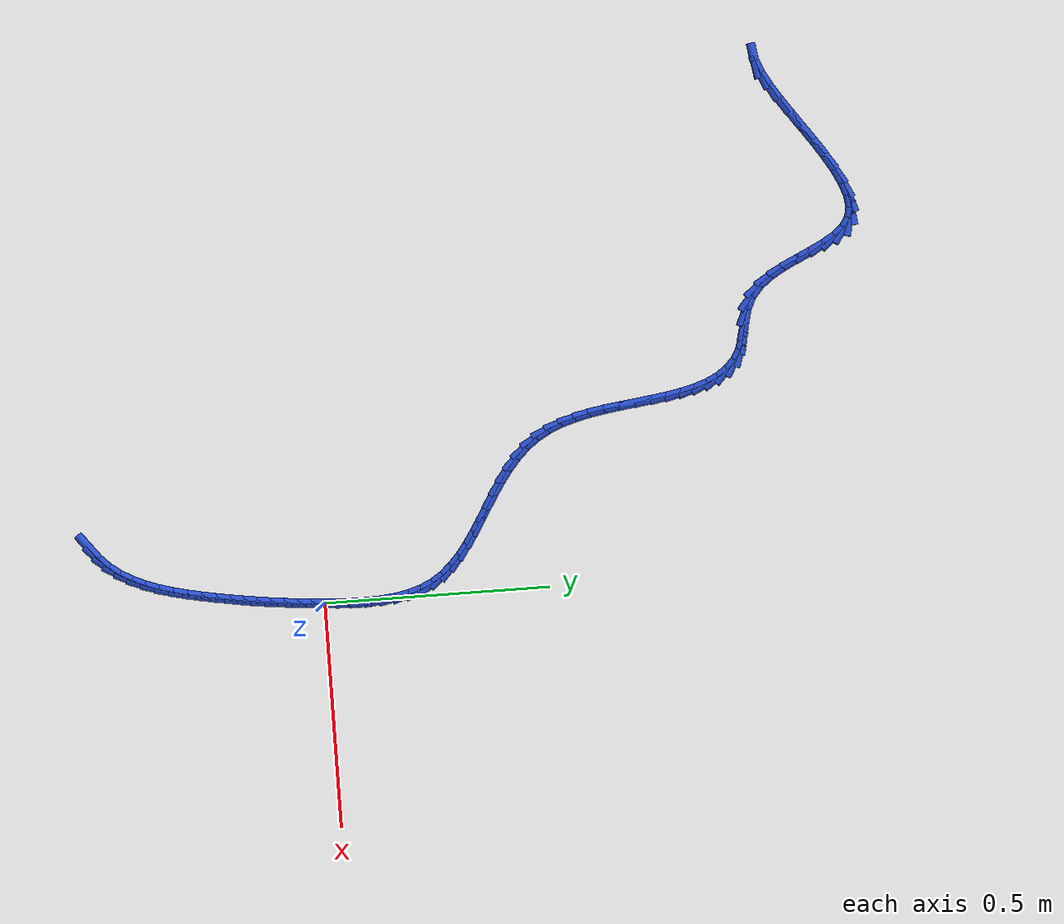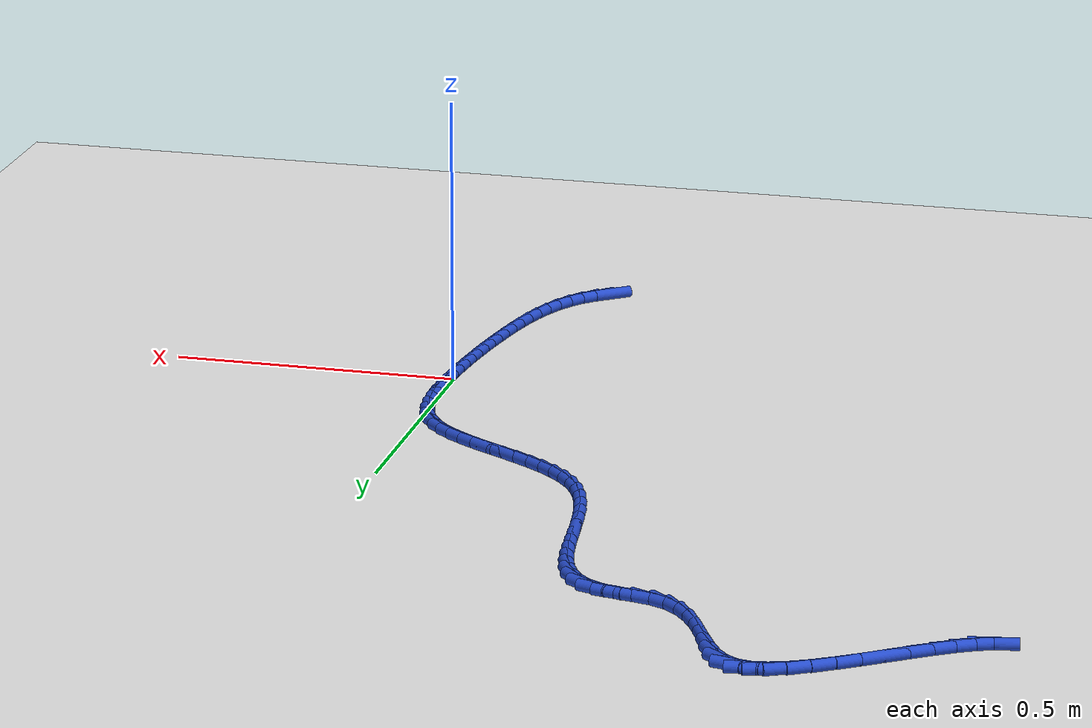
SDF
<sdf version="1.6">
 <world name="default">
  <model name="ground_plane">
   <static>1</static>
   <link name="link">
    <collision name="collision">
     <geometry><plane><normal>0 0 1</normal><size>100 100</size></plane></geometry>
     <surface><friction><ode><mu>100</mu><mu2>50</mu2></ode></friction></surface>
    </collision>
    <visual name="visual">
     <cast_shadows>0</cast_shadows>
     <geometry><plane><normal>0 0 1</normal><size>100 100</size></plane></geometry>
     <material>
      <script><uri>file://media/materials/scripts/gazebo.material</uri><name>Gazebo/WhiteGlow</name></script>
     </material>
    </visual>
   </link>
  </model>
  <model name="line">
   <link name="link_0">
    <pose>-3.903127820947816e-18 -1.3877787807814457e-16 0.01 0 1.57 1.5075836220869705</pose>
    <collision name="collision">
     <geometry><cylinder><radius>0.01</radius><length>0.08</length></cylinder></geometry>
    </collision>
    <visual name="visual">
     <material>
      <script><name>Gazebo/Blue</name><uri>file://media/materials/scripts/gazebo.material</uri></script>
     </material>
     <geometry><cylinder><radius>0.01</radius><length>0.08</length></cylinder></geometry>
    </visual>
   </link>
   <link name="link_1">
    <pose>0.0020164505479032184 0.03185695079526101 0.01 0 1.57 1.5313063499105368</pose>
    <collision name="collision">
     <geometry><cylinder><radius>0.01</radius><length>0.08</length></cylinder></geometry>
    </collision>
    <visual name="visual">
     <material>
      <script><name>Gazebo/Blue</name><uri>file://media/materials/scripts/gazebo.material</uri></script>
     </material>
     <geometry><cylinder><radius>0.01</radius><length>0.08</length></cylinder></geometry>
    </visual>
   </link>
   <link name="link_2">
    <pose>0.0032904388714438586 0.06410123431389136 0.01 0 1.57 1.5672807837218443</pose>
    <collision name="collision">
     <geometry><cylinder><radius>0.01</radius><length>0.08</length></cylinder></geometry>
    </collision>
    <visual name="visual">
     <material>
      <script><name>Gazebo/Blue</name><uri>file://media/materials/scripts/gazebo.material</uri></script>
     </material>
     <geometry><cylinder><radius>0.01</radius><length>0.08</length></cylinder></geometry>
    </visual>
   </link>
   <link name="link_3">
    <pose>0.003403725928168772 0.096325726423337 0.01 0 1.57 -1.5247356906483298</pose>
    <collision name="collision">
     <geometry><cylinder><radius>0.01</radius><length>0.08</length></cylinder></geometry>
    </collision>
    <visual name="visual">
     <material>
      <script><name>Gazebo/Blue</name><uri>file://media/materials/scripts/gazebo.material</uri></script>
     </material>
     <geometry><cylinder><radius>0.01</radius><length>0.08</length></cylinder></geometry>
    </visual>
   </link>
   <link name="link_4">
    <pose>0.0019380726756248095 0.12812330299104396 0.01 0 1.57 -1.4594232896090267</pose>
    <collision name="collision">
     <geometry><cylinder><radius>0.01</radius><length>0.08</length></cylinder></geometry>
    </collision>
    <visual name="visual">
     <material>
      <script><name>Gazebo/Blue</name><uri>file://media/materials/scripts/gazebo.material</uri></script>
     </material>
     <geometry><cylinder><radius>0.01</radius><length>0.08</length></cylinder></geometry>
    </visual>
   </link>
   <link name="link_5">
    <pose>-0.0015247599286411775 0.15908683988445826 0.01 0 1.57 -1.375544059959423</pose>
    <collision name="collision">
     <geometry><cylinder><radius>0.01</radius><length>0.08</length></cylinder></geometry>
    </collision>
    <visual name="visual">
     <material>
      <script><name>Gazebo/Blue</name><uri>file://media/materials/scripts/gazebo.material</uri></script>
     </material>
     <geometry><cylinder><radius>0.01</radius><length>0.08</length></cylinder></geometry>
    </visual>
   </link>
   <link name="link_6">
    <pose>-0.007403010927082336 0.18880921297102593 0.01 0 1.57 -1.2699000928512538</pose>
    <collision name="collision">
     <geometry><cylinder><radius>0.01</radius><length>0.08</length></cylinder></geometry>
    </collision>
    <visual name="visual">
     <material>
      <script><name>Gazebo/Blue</name><uri>file://media/materials/scripts/gazebo.material</uri></script>
     </material>
     <geometry><cylinder><radius>0.01</radius><length>0.08</length></cylinder></geometry>
    </visual>
   </link>
   <link name="link_7">
    <pose>-0.016114919362151814 0.21688329811819312 0.01 0 1.57 -1.1398093752033278</pose>
    <collision name="collision">
     <geometry><cylinder><radius>0.01</radius><length>0.08</length></cylinder></geometry>
    </collision>
    <visual name="visual">
     <material>
      <script><name>Gazebo/Blue</name><uri>file://media/materials/scripts/gazebo.material</uri></script>
     </material>
     <geometry><cylinder><radius>0.01</radius><length>0.08</length></cylinder></geometry>
    </visual>
   </link>
   <link name="link_8">
    <pose>-0.02807872427630276 0.24290197119340579 0.01 0 1.57 -0.9881987893661152</pose>
    <collision name="collision">
     <geometry><cylinder><radius>0.01</radius><length>0.08</length></cylinder></geometry>
    </collision>
    <visual name="visual">
     <material>
      <script><name>Gazebo/Blue</name><uri>file://media/materials/scripts/gazebo.material</uri></script>
     </material>
     <geometry><cylinder><radius>0.01</radius><length>0.08</length></cylinder></geometry>
    </visual>
   </link>
   <link name="link_9">
    <pose>-0.04364009713171598 0.26651962588731637 0.01 0 1.57 -0.846864442697634</pose>
    <collision name="collision">
     <geometry><cylinder><radius>0.01</radius><length>0.08</length></cylinder></geometry>
    </collision>
    <visual name="visual">
     <material>
      <script><name>Gazebo/Blue</name><uri>file://media/materials/scripts/gazebo.material</uri></script>
     </material>
     <geometry><cylinder><radius>0.01</radius><length>0.08</length></cylinder></geometry>
    </visual>
   </link>
   <link name="link_10">
    <pose>-0.06254245248338933 0.2879012080379926 0.01 0 1.57 -0.7339181928377716</pose>
    <collision name="collision">
     <geometry><cylinder><radius>0.01</radius><length>0.08</length></cylinder></geometry>
    </collision>
    <visual name="visual">
     <material>
      <script><name>Gazebo/Blue</name><uri>file://media/materials/scripts/gazebo.material</uri></script>
     </material>
     <geometry><cylinder><radius>0.01</radius><length>0.08</length></cylinder></geometry>
    </visual>
   </link>
   <link name="link_11">
    <pose>-0.08423112233999577 0.3074643574456941 0.01 0 1.57 -0.6495082023152806</pose>
    <collision name="collision">
     <geometry><cylinder><radius>0.01</radius><length>0.08</length></cylinder></geometry>
    </collision>
    <visual name="visual">
     <material>
      <script><name>Gazebo/Blue</name><uri>file://media/materials/scripts/gazebo.material</uri></script>
     </material>
     <geometry><cylinder><radius>0.01</radius><length>0.08</length></cylinder></geometry>
    </visual>
   </link>
   <link name="link_12">
    <pose>-0.10814931214468339 0.32562851666724923 0.01 0 1.57 -0.591349700956301</pose>
    <collision name="collision">
     <geometry><cylinder><radius>0.01</radius><length>0.08</length></cylinder></geometry>
    </collision>
    <visual name="visual">
     <material>
      <script><name>Gazebo/Blue</name><uri>file://media/materials/scripts/gazebo.material</uri></script>
     </material>
     <geometry><cylinder><radius>0.01</radius><length>0.08</length></cylinder></geometry>
    </visual>
   </link>
   <link name="link_13">
    <pose>-0.1337402273406002 0.3428131282594858 0.01 0 1.57 -0.5567859104704407</pose>
    <collision name="collision">
     <geometry><cylinder><radius>0.01</radius><length>0.08</length></cylinder></geometry>
    </collision>
    <visual name="visual">
     <material>
      <script><name>Gazebo/Blue</name><uri>file://media/materials/scripts/gazebo.material</uri></script>
     </material>
     <geometry><cylinder><radius>0.01</radius><length>0.08</length></cylinder></geometry>
    </visual>
   </link>
   <link name="link_14">
    <pose>-0.1604470733708942 0.3594376347792322 0.01 0 1.57 -0.5437635951876674</pose>
    <collision name="collision">
     <geometry><cylinder><radius>0.01</radius><length>0.08</length></cylinder></geometry>
    </collision>
    <visual name="visual">
     <material>
      <script><name>Gazebo/Blue</name><uri>file://media/materials/scripts/gazebo.material</uri></script>
     </material>
     <geometry><cylinder><radius>0.01</radius><length>0.08</length></cylinder></geometry>
    </visual>
   </link>
   <link name="link_15">
    <pose>-0.1877130556787135 0.3759214787833164 0.01 0 1.57 -0.5511791643567712</pose>
    <collision name="collision">
     <geometry><cylinder><radius>0.01</radius><length>0.08</length></cylinder></geometry>
    </collision>
    <visual name="visual">
     <material>
      <script><name>Gazebo/Blue</name><uri>file://media/materials/scripts/gazebo.material</uri></script>
     </material>
     <geometry><cylinder><radius>0.01</radius><length>0.08</length></cylinder></geometry>
    </visual>
   </link>
   <link name="link_16">
    <pose>-0.21498137970720602 0.3926841028285664 0.01 0 1.57 -0.5789191369160495</pose>
    <collision name="collision">
     <geometry><cylinder><radius>0.01</radius><length>0.08</length></cylinder></geometry>
    </collision>
    <visual name="visual">
     <material>
      <script><name>Gazebo/Blue</name><uri>file://media/materials/scripts/gazebo.material</uri></script>
     </material>
     <geometry><cylinder><radius>0.01</radius><length>0.08</length></cylinder></geometry>
    </visual>
   </link>
   <link name="link_17">
    <pose>-0.24169525089951993 0.41014494947181074 0.01 0 1.57 -0.627733292693414</pose>
    <collision name="collision">
     <geometry><cylinder><radius>0.01</radius><length>0.08</length></cylinder></geometry>
    </collision>
    <visual name="visual">
     <material>
      <script><name>Gazebo/Blue</name><uri>file://media/materials/scripts/gazebo.material</uri></script>
     </material>
     <geometry><cylinder><radius>0.01</radius><length>0.08</length></cylinder></geometry>
    </visual>
   </link>
   <link name="link_18">
    <pose>-0.26729787469880323 0.4287234612698771 0.01 0 1.57 -0.6989187107194657</pose>
    <collision name="collision">
     <geometry><cylinder><radius>0.01</radius><length>0.08</length></cylinder></geometry>
    </collision>
    <visual name="visual">
     <material>
      <script><name>Gazebo/Blue</name><uri>file://media/materials/scripts/gazebo.material</uri></script>
     </material>
     <geometry><cylinder><radius>0.01</radius><length>0.08</length></cylinder></geometry>
    </visual>
   </link>
   <link name="link_19">
    <pose>-0.2912324565482039 0.4488390807795937 0.01 0 1.57 -0.7936759227544717</pose>
    <collision name="collision">
     <geometry><cylinder><radius>0.01</radius><length>0.08</length></cylinder></geometry>
    </collision>
    <visual name="visual">
     <material>
      <script><name>Gazebo/Blue</name><uri>file://media/materials/scripts/gazebo.material</uri></script>
     </material>
     <geometry><cylinder><radius>0.01</radius><length>0.08</length></cylinder></geometry>
    </visual>
   </link>
   <link name="link_20">
    <pose>-0.31294220189086996 0.4709112505577889 0.01 0 1.57 -0.9119773880350294</pose>
    <collision name="collision">
     <geometry><cylinder><radius>0.01</radius><length>0.08</length></cylinder></geometry>
    </collision>
    <visual name="visual">
     <material>
      <script><name>Gazebo/Blue</name><uri>file://media/materials/scripts/gazebo.material</uri></script>
     </material>
     <geometry><cylinder><radius>0.01</radius><length>0.08</length></cylinder></geometry>
    </visual>
   </link>
   <link name="link_21">
    <pose>-0.33187031616994955 0.4953594131612905 0.01 0 1.57 -1.0485901152458557</pose>
    <collision name="collision">
     <geometry><cylinder><radius>0.01</radius><length>0.08</length></cylinder></geometry>
    </collision>
    <visual name="visual">
     <material>
      <script><name>Gazebo/Blue</name><uri>file://media/materials/scripts/gazebo.material</uri></script>
     </material>
     <geometry><cylinder><radius>0.01</radius><length>0.08</length></cylinder></geometry>
    </visual>
   </link>
   <link name="link_22">
    <pose>-0.3475195333807346 0.5225520334368505 0.01 0 1.57 -1.1731074590070527</pose>
    <collision name="collision">
     <geometry><cylinder><radius>0.01</radius><length>0.08</length></cylinder></geometry>
    </collision>
    <visual name="visual">
     <material>
      <script><name>Gazebo/Blue</name><uri>file://media/materials/scripts/gazebo.material</uri></script>
     </material>
     <geometry><cylinder><radius>0.01</radius><length>0.08</length></cylinder></geometry>
    </visual>
   </link>
   <link name="link_23">
    <pose>-0.3600231857537802 0.5523175588302576 0.01 0 1.57 -1.2701942811796618</pose>
    <collision name="collision">
     <geometry><cylinder><radius>0.01</radius><length>0.08</length></cylinder></geometry>
    </collision>
    <visual name="visual">
     <material>
      <script><name>Gazebo/Blue</name><uri>file://media/materials/scripts/gazebo.material</uri></script>
     </material>
     <geometry><cylinder><radius>0.01</radius><length>0.08</length></cylinder></geometry>
    </visual>
   </link>
   <link name="link_24">
    <pose>-0.3698940579065953 0.5841594899664346 0.01 0 1.57 -1.3427371461727866</pose>
    <collision name="collision">
     <geometry><cylinder><radius>0.01</radius><length>0.08</length></cylinder></geometry>
    </collision>
    <visual name="visual">
     <material>
      <script><name>Gazebo/Blue</name><uri>file://media/materials/scripts/gazebo.material</uri></script>
     </material>
     <geometry><cylinder><radius>0.01</radius><length>0.08</length></cylinder></geometry>
    </visual>
   </link>
   <link name="link_25">
    <pose>-0.3776501348054274 0.6175768741137091 0.01 0 1.57 -1.3940874275996893</pose>
    <collision name="collision">
     <geometry><cylinder><radius>0.01</radius><length>0.08</length></cylinder></geometry>
    </collision>
    <visual name="visual">
     <material>
      <script><name>Gazebo/Blue</name><uri>file://media/materials/scripts/gazebo.material</uri></script>
     </material>
     <geometry><cylinder><radius>0.01</radius><length>0.08</length></cylinder></geometry>
    </visual>
   </link>
   <link name="link_26">
    <pose>-0.38380940141652425 0.6520687585404089 0.01 0 1.57 -1.4269129249123744</pose>
    <collision name="collision">
     <geometry><cylinder><radius>0.01</radius><length>0.08</length></cylinder></geometry>
    </collision>
    <visual name="visual">
     <material>
      <script><name>Gazebo/Blue</name><uri>file://media/materials/scripts/gazebo.material</uri></script>
     </material>
     <geometry><cylinder><radius>0.01</radius><length>0.08</length></cylinder></geometry>
    </visual>
   </link>
   <link name="link_27">
    <pose>-0.38888984270613347 0.6871341905148619 0.01 0 1.57 -1.442874485544371</pose>
    <collision name="collision">
     <geometry><cylinder><radius>0.01</radius><length>0.08</length></cylinder></geometry>
    </collision>
    <visual name="visual">
     <material>
      <script><name>Gazebo/Blue</name><uri>file://media/materials/scripts/gazebo.material</uri></script>
     </material>
     <geometry><cylinder><radius>0.01</radius><length>0.08</length></cylinder></geometry>
    </visual>
   </link>
   <link name="link_28">
    <pose>-0.3934094436405026 0.722272217305396 0.01 0 1.57 -1.4425275494494239</pose>
    <collision name="collision">
     <geometry><cylinder><radius>0.01</radius><length>0.08</length></cylinder></geometry>
    </collision>
    <visual name="visual">
     <material>
      <script><name>Gazebo/Blue</name><uri>file://media/materials/scripts/gazebo.material</uri></script>
     </material>
     <geometry><cylinder><radius>0.01</radius><length>0.08</length></cylinder></geometry>
    </visual>
   </link>
   <link name="link_29">
    <pose>-0.3978861891858792 0.7569818861803387 0.01 0 1.57 -1.4252426396143179</pose>
    <collision name="collision">
     <geometry><cylinder><radius>0.01</radius><length>0.08</length></cylinder></geometry>
    </collision>
    <visual name="visual">
     <material>
      <script><name>Gazebo/Blue</name><uri>file://media/materials/scripts/gazebo.material</uri></script>
     </material>
     <geometry><cylinder><radius>0.01</radius><length>0.08</length></cylinder></geometry>
    </visual>
   </link>
   <link name="link_30">
    <pose>-0.402838064308511 0.7907622444080178 0.01 0 1.57 -1.3890537372332847</pose>
    <collision name="collision">
     <geometry><cylinder><radius>0.01</radius><length>0.08</length></cylinder></geometry>
    </collision>
    <visual name="visual">
     <material>
      <script><name>Gazebo/Blue</name><uri>file://media/materials/scripts/gazebo.material</uri></script>
     </material>
     <geometry><cylinder><radius>0.01</radius><length>0.08</length></cylinder></geometry>
    </visual>
   </link>
   <link name="link_31">
    <pose>-0.4087830539746455 0.8231123392567612 0.01 0 1.57 -1.3304216321388194</pose>
    <collision name="collision">
     <geometry><cylinder><radius>0.01</radius><length>0.08</length></cylinder></geometry>
    </collision>
    <visual name="visual">
     <material>
      <script><name>Gazebo/Blue</name><uri>file://media/materials/scripts/gazebo.material</uri></script>
     </material>
     <geometry><cylinder><radius>0.01</radius><length>0.08</length></cylinder></geometry>
    </visual>
   </link>
   <link name="link_32">
    <pose>-0.41623914315053046 0.853531217994897 0.01 0 1.57 -1.2440288575850311</pose>
    <collision name="collision">
     <geometry><cylinder><radius>0.01</radius><length>0.08</length></cylinder></geometry>
    </collision>
    <visual name="visual">
     <material>
      <script><name>Gazebo/Blue</name><uri>file://media/materials/scripts/gazebo.material</uri></script>
     </material>
     <geometry><cylinder><radius>0.01</radius><length>0.08</length></cylinder></geometry>
    </visual>
   </link>
   <link name="link_33">
    <pose>-0.42572431680241307 0.881517927890752 0.01 0 1.57 -1.1230648402112118</pose>
    <collision name="collision">
     <geometry><cylinder><radius>0.01</radius><length>0.08</length></cylinder></geometry>
    </collision>
    <visual name="visual">
     <material>
      <script><name>Gazebo/Blue</name><uri>file://media/materials/scripts/gazebo.material</uri></script>
     </material>
     <geometry><cylinder><radius>0.01</radius><length>0.08</length></cylinder></geometry>
    </visual>
   </link>
   <link name="link_34">
    <pose>-0.4377565598965416 0.9065715162126552 0.01 0 1.57 -0.9612000604306511</pose>
    <collision name="collision">
     <geometry><cylinder><radius>0.01</radius><length>0.08</length></cylinder></geometry>
    </collision>
    <visual name="visual">
     <material>
      <script><name>Gazebo/Blue</name><uri>file://media/materials/scripts/gazebo.material</uri></script>
     </material>
     <geometry><cylinder><radius>0.01</radius><length>0.08</length></cylinder></geometry>
    </visual>
   </link>
   <link name="link_35">
    <pose>-0.45285385739916295 0.9281910302289332 0.01 0 1.57 -0.7580200280680599</pose>
    <collision name="collision">
     <geometry><cylinder><radius>0.01</radius><length>0.08</length></cylinder></geometry>
    </collision>
    <visual name="visual">
     <material>
      <script><name>Gazebo/Blue</name><uri>file://media/materials/scripts/gazebo.material</uri></script>
     </material>
     <geometry><cylinder><radius>0.01</radius><length>0.08</length></cylinder></geometry>
    </visual>
   </link>
   <link name="link_36">
    <pose>-0.4715341942765252 0.9458755172079145 0.01 0 1.57 -0.5267430619988737</pose>
    <collision name="collision">
     <geometry><cylinder><radius>0.01</radius><length>0.08</length></cylinder></geometry>
    </collision>
    <visual name="visual">
     <material>
      <script><name>Gazebo/Blue</name><uri>file://media/materials/scripts/gazebo.material</uri></script>
     </material>
     <geometry><cylinder><radius>0.01</radius><length>0.08</length></cylinder></geometry>
    </visual>
   </link>
   <link name="link_37">
    <pose>-0.4943155554948757 0.9591240244179267 0.01 0 1.57 -0.30266845434637196</pose>
    <collision name="collision">
     <geometry><cylinder><radius>0.01</radius><length>0.08</length></cylinder></geometry>
    </collision>
    <visual name="visual">
     <material>
      <script><name>Gazebo/Blue</name><uri>file://media/materials/scripts/gazebo.material</uri></script>
     </material>
     <geometry><cylinder><radius>0.01</radius><length>0.08</length></cylinder></geometry>
    </visual>
   </link>
   <link name="link_38">
    <pose>-0.5215664681722004 0.9676334616616956 0.01 0 1.57 -0.19589830308612133</pose>
    <collision name="collision">
     <geometry><cylinder><radius>0.01</radius><length>0.08</length></cylinder></geometry>
    </collision>
    <visual name="visual">
     <material>
      <script><name>Gazebo/Blue</name><uri>file://media/materials/scripts/gazebo.material</uri></script>
     </material>
     <geometry><cylinder><radius>0.01</radius><length>0.08</length></cylinder></geometry>
    </visual>
   </link>
   <link name="link_39">
    <pose>-0.5517500883862227 0.9736231994047991 0.01 0 1.57 -0.2407019473134566</pose>
    <collision name="collision">
     <geometry><cylinder><radius>0.01</radius><length>0.08</length></cylinder></geometry>
    </collision>
    <visual name="visual">
     <material>
      <script><name>Gazebo/Blue</name><uri>file://media/materials/scripts/gazebo.material</uri></script>
     </material>
     <geometry><cylinder><radius>0.01</radius><length>0.08</length></cylinder></geometry>
    </visual>
   </link>
   <link name="link_40">
    <pose>-0.5820155604673277 0.9810521868474292 0.01 0 1.57 -0.43623362921171305</pose>
    <collision name="collision">
     <geometry><cylinder><radius>0.01</radius><length>0.08</length></cylinder></geometry>
    </collision>
    <visual name="visual">
     <material>
      <script><name>Gazebo/Blue</name><uri>file://media/materials/scripts/gazebo.material</uri></script>
     </material>
     <geometry><cylinder><radius>0.01</radius><length>0.08</length></cylinder></geometry>
    </visual>
   </link>
   <link name="link_41">
    <pose>-0.6095134380599755 0.9938713542574893 0.01 0 1.57 -0.7072970957256787</pose>
    <collision name="collision">
     <geometry><cylinder><radius>0.01</radius><length>0.08</length></cylinder></geometry>
    </collision>
    <visual name="visual">
     <material>
      <script><name>Gazebo/Blue</name><uri>file://media/materials/scripts/gazebo.material</uri></script>
     </material>
     <geometry><cylinder><radius>0.01</radius><length>0.08</length></cylinder></geometry>
    </visual>
   </link>
   <link name="link_42">
    <pose>-0.6328324273686436 1.0138053536102383 0.01 0 1.57 -0.9093988808996616</pose>
    <collision name="collision">
     <geometry><cylinder><radius>0.01</radius><length>0.08</length></cylinder></geometry>
    </collision>
    <visual name="visual">
     <material>
      <script><name>Gazebo/Blue</name><uri>file://media/materials/scripts/gazebo.material</uri></script>
     </material>
     <geometry><cylinder><radius>0.01</radius><length>0.08</length></cylinder></geometry>
    </visual>
   </link>
   <link name="link_43">
    <pose>-0.652677863115749 1.039302269252374 0.01 0 1.57 -1.0379672441169334</pose>
    <collision name="collision">
     <geometry><cylinder><radius>0.01</radius><length>0.08</length></cylinder></geometry>
    </collision>
    <visual name="visual">
     <material>
      <script><name>Gazebo/Blue</name><uri>file://media/materials/scripts/gazebo.material</uri></script>
     </material>
     <geometry><cylinder><radius>0.01</radius><length>0.08</length></cylinder></geometry>
    </visual>
   </link>
   <link name="link_44">
    <pose>-0.6699246125816707 1.0685477469936964 0.01 0 1.57 -1.108867010465671</pose>
    <collision name="collision">
     <geometry><cylinder><radius>0.01</radius><length>0.08</length></cylinder></geometry>
    </collision>
    <visual name="visual">
     <material>
      <script><name>Gazebo/Blue</name><uri>file://media/materials/scripts/gazebo.material</uri></script>
     </material>
     <geometry><cylinder><radius>0.01</radius><length>0.08</length></cylinder></geometry>
    </visual>
   </link>
   <link name="link_45">
    <pose>-0.6854475430467871 1.0997274326440063 0.01 0 1.57 -1.1323990076663486</pose>
    <collision name="collision">
     <geometry><cylinder><radius>0.01</radius><length>0.08</length></cylinder></geometry>
    </collision>
    <visual name="visual">
     <material>
      <script><name>Gazebo/Blue</name><uri>file://media/materials/scripts/gazebo.material</uri></script>
     </material>
     <geometry><cylinder><radius>0.01</radius><length>0.08</length></cylinder></geometry>
    </visual>
   </link>
   <link name="link_46">
    <pose>-0.7001215217914767 1.1310269720131048 0.01 0 1.57 -1.109925741718624</pose>
    <collision name="collision">
     <geometry><cylinder><radius>0.01</radius><length>0.08</length></cylinder></geometry>
    </collision>
    <visual name="visual">
     <material>
      <script><name>Gazebo/Blue</name><uri>file://media/materials/scripts/gazebo.material</uri></script>
     </material>
     <geometry><cylinder><radius>0.01</radius><length>0.08</length></cylinder></geometry>
    </visual>
   </link>
   <link name="link_47">
    <pose>-0.7148214160961184 1.1606320109107924 0.01 0 1.57 -1.0319853666192091</pose>
    <collision name="collision">
     <geometry><cylinder><radius>0.01</radius><length>0.08</length></cylinder></geometry>
    </collision>
    <visual name="visual">
     <material>
      <script><name>Gazebo/Blue</name><uri>file://media/materials/scripts/gazebo.material</uri></script>
     </material>
     <geometry><cylinder><radius>0.01</radius><length>0.08</length></cylinder></geometry>
    </visual>
   </link>
   <link name="link_48">
    <pose>-0.7304220932410903 1.1867281951468691 0.01 0 1.57 -0.8741996581504637</pose>
    <collision name="collision">
     <geometry><cylinder><radius>0.01</radius><length>0.08</length></cylinder></geometry>
    </collision>
    <visual name="visual">
     <material>
      <script><name>Gazebo/Blue</name><uri>file://media/materials/scripts/gazebo.material</uri></script>
     </material>
     <geometry><cylinder><radius>0.01</radius><length>0.08</length></cylinder></geometry>
    </visual>
   </link>
   <link name="link_49">
    <pose>-0.7477984205067714 1.2075011705311365 0.01 0 1.57 -0.5977622757171739</pose>
    <collision name="collision">
     <geometry><cylinder><radius>0.01</radius><length>0.08</length></cylinder></geometry>
    </collision>
    <visual name="visual">
     <material>
      <script><name>Gazebo/Blue</name><uri>file://media/materials/scripts/gazebo.material</uri></script>
     </material>
     <geometry><cylinder><radius>0.01</radius><length>0.08</length></cylinder></geometry>
    </visual>
   </link>
   <link name="link_50">
    <pose>-0.7678252651735397 1.221136582873394 0.01 0 1.57 -0.20885263576957408</pose>
    <collision name="collision">
     <geometry><cylinder><radius>0.01</radius><length>0.08</length></cylinder></geometry>
    </collision>
    <visual name="visual">
     <material>
      <script><name>Gazebo/Blue</name><uri>file://media/materials/scripts/gazebo.material</uri></script>
     </material>
     <geometry><cylinder><radius>0.01</radius><length>0.08</length></cylinder></geometry>
    </visual>
   </link>
   <link name="link_51">
    <pose>-0.7912476072692822 1.226100790144109 0.01 0 1.57 0.12068090379388059</pose>
    <collision name="collision">
     <geometry><cylinder><radius>0.01</radius><length>0.08</length></cylinder></geometry>
    </collision>
    <visual name="visual">
     <material>
      <script><name>Gazebo/Blue</name><uri>file://media/materials/scripts/gazebo.material</uri></script>
     </material>
     <geometry><cylinder><radius>0.01</radius><length>0.08</length></cylinder></geometry>
    </visual>
   </link>
   <link name="link_52">
    <pose>-0.8178799573203202 1.2228710797868647 0.01 0 1.57 0.3315336128403359</pose>
    <collision name="collision">
     <geometry><cylinder><radius>0.01</radius><length>0.08</length></cylinder></geometry>
    </collision>
    <visual name="visual">
     <material>
      <script><name>Gazebo/Blue</name><uri>file://media/materials/scripts/gazebo.material</uri></script>
     </material>
     <geometry><cylinder><radius>0.01</radius><length>0.08</length></cylinder></geometry>
    </visual>
   </link>
   <link name="link_53">
    <pose>-0.8471310487269955 1.2128017042406312 0.01 0 1.57 0.4614123259922743</pose>
    <collision name="collision">
     <geometry><cylinder><radius>0.01</radius><length>0.08</length></cylinder></geometry>
    </collision>
    <visual name="visual">
     <material>
      <script><name>Gazebo/Blue</name><uri>file://media/materials/scripts/gazebo.material</uri></script>
     </material>
     <geometry><cylinder><radius>0.01</radius><length>0.08</length></cylinder></geometry>
    </visual>
   </link>
   <link name="link_54">
    <pose>-0.8784079301726923 1.1972505569524734 0.01 0 1.57 0.5415246053904844</pose>
    <collision name="collision">
     <geometry><cylinder><radius>0.01</radius><length>0.08</length></cylinder></geometry>
    </collision>
    <visual name="visual">
     <material>
      <script><name>Gazebo/Blue</name><uri>file://media/materials/scripts/gazebo.material</uri></script>
     </material>
     <geometry><cylinder><radius>0.01</radius><length>0.08</length></cylinder></geometry>
    </visual>
   </link>
   <link name="link_55">
    <pose>-0.9111176503407926 1.1775755313694554 0.01 0 1.57 0.5895405316093695</pose>
    <collision name="collision">
     <geometry><cylinder><radius>0.01</radius><length>0.08</length></cylinder></geometry>
    </collision>
    <visual name="visual">
     <material>
      <script><name>Gazebo/Blue</name><uri>file://media/materials/scripts/gazebo.material</uri></script>
     </material>
     <geometry><cylinder><radius>0.01</radius><length>0.08</length></cylinder></geometry>
    </visual>
   </link>
   <link name="link_56">
    <pose>-0.9446672579146804 1.1551345209386426 0.01 0 1.57 0.6145191289430184</pose>
    <collision name="collision">
     <geometry><cylinder><radius>0.01</radius><length>0.08</length></cylinder></geometry>
    </collision>
    <visual name="visual">
     <material>
      <script><name>Gazebo/Blue</name><uri>file://media/materials/scripts/gazebo.material</uri></script>
     </material>
     <geometry><cylinder><radius>0.01</radius><length>0.08</length></cylinder></geometry>
    </visual>
   </link>
   <link name="link_57">
    <pose>-0.9784638015777384 1.1312854191070996 0.01 0 1.57 0.6203695377131488</pose>
    <collision name="collision">
     <geometry><cylinder><radius>0.01</radius><length>0.08</length></cylinder></geometry>
    </collision>
    <visual name="visual">
     <material>
      <script><name>Gazebo/Blue</name><uri>file://media/materials/scripts/gazebo.material</uri></script>
     </material>
     <geometry><cylinder><radius>0.01</radius><length>0.08</length></cylinder></geometry>
    </visual>
   </link>
   <link name="link_58">
    <pose>-1.0119143300133497 1.1073861193218912 0.01 0 1.57 0.6072808321794766</pose>
    <collision name="collision">
     <geometry><cylinder><radius>0.01</radius><length>0.08</length></cylinder></geometry>
    </collision>
    <visual name="visual">
     <material>
      <script><name>Gazebo/Blue</name><uri>file://media/materials/scripts/gazebo.material</uri></script>
     </material>
     <geometry><cylinder><radius>0.01</radius><length>0.08</length></cylinder></geometry>
    </visual>
   </link>
   <link name="link_59">
    <pose>-1.044425891904898 1.0847945150300824 0.01 0 1.57 0.5715779477260751</pose>
    <collision name="collision">
     <geometry><cylinder><radius>0.01</radius><length>0.08</length></cylinder></geometry>
    </collision>
    <visual name="visual">
     <material>
      <script><name>Gazebo/Blue</name><uri>file://media/materials/scripts/gazebo.material</uri></script>
     </material>
     <geometry><cylinder><radius>0.01</radius><length>0.08</length></cylinder></geometry>
    </visual>
   </link>
   <link name="link_60">
    <pose>-1.0754055359357662 1.0648684996787376 0.01 0 1.57 0.5037050667707982</pose>
    <collision name="collision">
     <geometry><cylinder><radius>0.01</radius><length>0.08</length></cylinder></geometry>
    </collision>
    <visual name="visual">
     <material>
      <script><name>Gazebo/Blue</name><uri>file://media/materials/scripts/gazebo.material</uri></script>
     </material>
     <geometry><cylinder><radius>0.01</radius><length>0.08</length></cylinder></geometry>
    </visual>
   </link>
   <link name="link_61">
    <pose>-1.1042603107893374 1.0489659667149216 0.01 0 1.57 0.38269370177632833</pose>
    <collision name="collision">
     <geometry><cylinder><radius>0.01</radius><length>0.08</length></cylinder></geometry>
    </collision>
    <visual name="visual">
     <material>
      <script><name>Gazebo/Blue</name><uri>file://media/materials/scripts/gazebo.material</uri></script>
     </material>
     <geometry><cylinder><radius>0.01</radius><length>0.08</length></cylinder></geometry>
    </visual>
   </link>
   <link name="link_62">
    <pose>-1.130397265148994 1.038444809585699 0.01 0 1.57 0.16419048218357898</pose>
    <collision name="collision">
     <geometry><cylinder><radius>0.01</radius><length>0.08</length></cylinder></geometry>
    </collision>
    <visual name="visual">
     <material>
      <script><name>Gazebo/Blue</name><uri>file://media/materials/scripts/gazebo.material</uri></script>
     </material>
     <geometry><cylinder><radius>0.01</radius><length>0.08</length></cylinder></geometry>
    </visual>
   </link>
   <link name="link_232">
    <pose>-0.1581131715787488 -0.5101994652653196 0.01 0 1.57 0.6563259415508585</pose>
    <collision name="collision">
     <geometry><cylinder><radius>0.01</radius><length>0.08</length></cylinder></geometry>
    </collision>
    <visual name="visual">
     <material>
      <script><name>Gazebo/Blue</name><uri>file://media/materials/scripts/gazebo.material</uri></script>
     </material>
     <geometry><cylinder><radius>0.01</radius><length>0.08</length></cylinder></geometry>
    </visual>
   </link>
   <link name="link_233">
    <pose>-0.13487589108421266 -0.4923013092360571 0.01 0 1.57 0.7905616000012837</pose>
    <collision name="collision">
     <geometry><cylinder><radius>0.01</radius><length>0.08</length></cylinder></geometry>
    </collision>
    <visual name="visual">
     <material>
      <script><name>Gazebo/Blue</name><uri>file://media/materials/scripts/gazebo.material</uri></script>
     </material>
     <geometry><cylinder><radius>0.01</radius><length>0.08</length></cylinder></geometry>
    </visual>
   </link>
   <link name="link_234">
    <pose>-0.11443548587366513 -0.47164872107368794 0.01 0 1.57 0.9297662838577887</pose>
    <collision name="collision">
     <geometry><cylinder><radius>0.01</radius><length>0.08</length></cylinder></geometry>
    </collision>
    <visual name="visual">
     <material>
      <script><name>Gazebo/Blue</name><uri>file://media/materials/scripts/gazebo.material</uri></script>
     </material>
     <geometry><cylinder><radius>0.01</radius><length>0.08</length></cylinder></geometry>
    </visual>
   </link>
   <link name="link_235">
    <pose>-0.0969142559095238 -0.44816641633415544 0.01 0 1.57 1.0486658299564644</pose>
    <collision name="collision">
     <geometry><cylinder><radius>0.01</radius><length>0.08</length></cylinder></geometry>
    </collision>
    <visual name="visual">
     <material>
      <script><name>Gazebo/Blue</name><uri>file://media/materials/scripts/gazebo.material</uri></script>
     </material>
     <geometry><cylinder><radius>0.01</radius><length>0.08</length></cylinder></geometry>
    </visual>
   </link>
   <link name="link_236">
    <pose>-0.08201769726202199 -0.42227710756893594 0.01 0 1.57 1.1463000490591593</pose>
    <collision name="collision">
     <geometry><cylinder><radius>0.01</radius><length>0.08</length></cylinder></geometry>
    </collision>
    <visual name="visual">
     <material>
      <script><name>Gazebo/Blue</name><uri>file://media/materials/scripts/gazebo.material</uri></script>
     </material>
     <geometry><cylinder><radius>0.01</radius><length>0.08</length></cylinder></geometry>
    </visual>
   </link>
   <link name="link_237">
    <pose>-0.06943064527189834 -0.3944281927544911 0.01 0 1.57 1.224556312382876</pose>
    <collision name="collision">
     <geometry><cylinder><radius>0.01</radius><length>0.08</length></cylinder></geometry>
    </collision>
    <visual name="visual">
     <material>
      <script><name>Gazebo/Blue</name><uri>file://media/materials/scripts/gazebo.material</uri></script>
     </material>
     <geometry><cylinder><radius>0.01</radius><length>0.08</length></cylinder></geometry>
    </visual>
   </link>
   <link name="link_238">
    <pose>-0.058837935279891465 -0.36506706986728227 0.01 0 1.57 1.2858121696784888</pose>
    <collision name="collision">
     <geometry><cylinder><radius>0.01</radius><length>0.08</length></cylinder></geometry>
    </collision>
    <visual name="visual">
     <material>
      <script><name>Gazebo/Blue</name><uri>file://media/materials/scripts/gazebo.material</uri></script>
     </material>
     <geometry><cylinder><radius>0.01</radius><length>0.08</length></cylinder></geometry>
    </visual>
   </link>
   <link name="link_239">
    <pose>-0.04992440262673999 -0.33464113688377106 0.01 0 1.57 1.3322345707120191</pose>
    <collision name="collision">
     <geometry><cylinder><radius>0.01</radius><length>0.08</length></cylinder></geometry>
    </collision>
    <visual name="visual">
     <material>
      <script><name>Gazebo/Blue</name><uri>file://media/materials/scripts/gazebo.material</uri></script>
     </material>
     <geometry><cylinder><radius>0.01</radius><length>0.08</length></cylinder></geometry>
    </visual>
   </link>
   <link name="link_240">
    <pose>-0.0423748826531827 -0.30359779178041973 0.01 0 1.57 1.365465763349191</pose>
    <collision name="collision">
     <geometry><cylinder><radius>0.01</radius><length>0.08</length></cylinder></geometry>
    </collision>
    <visual name="visual">
     <material>
      <script><name>Gazebo/Blue</name><uri>file://media/materials/scripts/gazebo.material</uri></script>
     </material>
     <geometry><cylinder><radius>0.01</radius><length>0.08</length></cylinder></geometry>
    </visual>
   </link>
   <link name="link_241">
    <pose>-0.03587421069995779 -0.2723844325336881 0.01 0 1.57 1.386522839041503</pose>
    <collision name="collision">
     <geometry><cylinder><radius>0.01</radius><length>0.08</length></cylinder></geometry>
    </collision>
    <visual name="visual">
     <material>
      <script><name>Gazebo/Blue</name><uri>file://media/materials/scripts/gazebo.material</uri></script>
     </material>
     <geometry><cylinder><radius>0.01</radius><length>0.08</length></cylinder></geometry>
    </visual>
   </link>
   <link name="link_242">
    <pose>-0.030107864847166373 -0.24144710692331864 0.01 0 1.57 1.3996046355934806</pose>
    <collision name="collision">
     <geometry><cylinder><radius>0.01</radius><length>0.08</length></cylinder></geometry>
    </collision>
    <visual name="visual">
     <material>
      <script><name>Gazebo/Blue</name><uri>file://media/materials/scripts/gazebo.material</uri></script>
     </material>
     <geometry><cylinder><radius>0.01</radius><length>0.08</length></cylinder></geometry>
    </visual>
   </link>
   <link name="link_243">
    <pose>-0.02485141651249253 -0.2110426044759767 0.01 0 1.57 1.4124860296816033</pose>
    <collision name="collision">
     <geometry><cylinder><radius>0.01</radius><length>0.08</length></cylinder></geometry>
    </collision>
    <visual name="visual">
     <material>
      <script><name>Gazebo/Blue</name><uri>file://media/materials/scripts/gazebo.material</uri></script>
     </material>
     <geometry><cylinder><radius>0.01</radius><length>0.08</length></cylinder></geometry>
    </visual>
   </link>
   <link name="link_244">
    <pose>-0.02006246499656613 -0.1810453304037749 0.01 0 1.57 1.425928811021688</pose>
    <collision name="collision">
     <geometry><cylinder><radius>0.01</radius><length>0.08</length></cylinder></geometry>
    </collision>
    <visual name="visual">
     <material>
      <script><name>Gazebo/Blue</name><uri>file://media/materials/scripts/gazebo.material</uri></script>
     </material>
     <geometry><cylinder><radius>0.01</radius><length>0.08</length></cylinder></geometry>
    </visual>
   </link>
   <link name="link_245">
    <pose>-0.015720542636981742 -0.15128361538798984 0.01 0 1.57 1.4397123433199968</pose>
    <collision name="collision">
     <geometry><cylinder><radius>0.01</radius><length>0.08</length></cylinder></geometry>
    </collision>
    <visual name="visual">
     <material>
      <script><name>Gazebo/Blue</name><uri>file://media/materials/scripts/gazebo.material</uri></script>
     </material>
     <geometry><cylinder><radius>0.01</radius><length>0.08</length></cylinder></geometry>
    </visual>
   </link>
   <link name="link_246">
    <pose>-0.01180518177133395 -0.12158579010989831 0.01 0 1.57 1.45359739609694</pose>
    <collision name="collision">
     <geometry><cylinder><radius>0.01</radius><length>0.08</length></cylinder></geometry>
    </collision>
    <visual name="visual">
     <material>
      <script><name>Gazebo/Blue</name><uri>file://media/materials/scripts/gazebo.material</uri></script>
     </material>
     <geometry><cylinder><radius>0.01</radius><length>0.08</length></cylinder></geometry>
    </visual>
   </link>
   <link name="link_247">
    <pose>-0.008295914737217311 -0.09178018525077691 0.01 0 1.57 1.4673400190792696</pose>
    <collision name="collision">
     <geometry><cylinder><radius>0.01</radius><length>0.08</length></cylinder></geometry>
    </collision>
    <visual name="visual">
     <material>
      <script><name>Gazebo/Blue</name><uri>file://media/materials/scripts/gazebo.material</uri></script>
     </material>
     <geometry><cylinder><radius>0.01</radius><length>0.08</length></cylinder></geometry>
    </visual>
   </link>
   <link name="link_248">
    <pose>-0.0051722738722263985 -0.06169513149190235 0.01 0 1.57 1.4807059431684768</pose>
    <collision name="collision">
     <geometry><cylinder><radius>0.01</radius><length>0.08</length></cylinder></geometry>
    </collision>
    <visual name="visual">
     <material>
      <script><name>Gazebo/Blue</name><uri>file://media/materials/scripts/gazebo.material</uri></script>
     </material>
     <geometry><cylinder><radius>0.01</radius><length>0.08</length></cylinder></geometry>
    </visual>
   </link>
   <link name="link_249">
    <pose>-0.0024137915139557783 -0.03115895951455129 0.01 0 1.57 1.493483721865547</pose>
    <collision name="collision">
     <geometry><cylinder><radius>0.01</radius><length>0.08</length></cylinder></geometry>
    </collision>
    <visual name="visual">
     <material>
      <script><name>Gazebo/Blue</name><uri>file://media/materials/scripts/gazebo.material</uri></script>
     </material>
     <geometry><cylinder><radius>0.01</radius><length>0.08</length></cylinder></geometry>
    </visual>
   </link>
   <link name="link_250">
    <pose>-2.3418766925686896e-17 -3.885780586188048e-16 0.01 0 1.57 1.5054950984193032</pose>
    <collision name="collision">
     <geometry><cylinder><radius>0.01</radius><length>0.08</length></cylinder></geometry>
    </collision>
    <visual name="visual">
     <material>
      <script><name>Gazebo/Blue</name><uri>file://media/materials/scripts/gazebo.material</uri></script>
     </material>
     <geometry><cylinder><radius>0.01</radius><length>0.08</length></cylinder></geometry>
    </visual>
   </link>
   <link name="link_251">
    <pose>0.002089568332046297 0.03195341637047366 0.01 0 1.57 1.5166016453491933</pose>
    <collision name="collision">
     <geometry><cylinder><radius>0.01</radius><length>0.08</length></cylinder></geometry>
    </collision>
    <visual name="visual">
     <material>
      <script><name>Gazebo/Blue</name><uri>file://media/materials/scripts/gazebo.material</uri></script>
     </material>
     <geometry><cylinder><radius>0.01</radius><length>0.08</length></cylinder></geometry>
    </visual>
   </link>
   <link name="link_252">
    <pose>0.0038753811445886156 0.06487295891559419 0.01 0 1.57 1.5111292309500373</pose>
    <collision name="collision">
     <geometry><cylinder><radius>0.01</radius><length>0.08</length></cylinder></geometry>
    </collision>
    <visual name="visual">
     <material>
      <script><name>Gazebo/Blue</name><uri>file://media/materials/scripts/gazebo.material</uri></script>
     </material>
     <geometry><cylinder><radius>0.01</radius><length>0.08</length></cylinder></geometry>
    </visual>
   </link>
  </model>
 </world>
</sdf>
